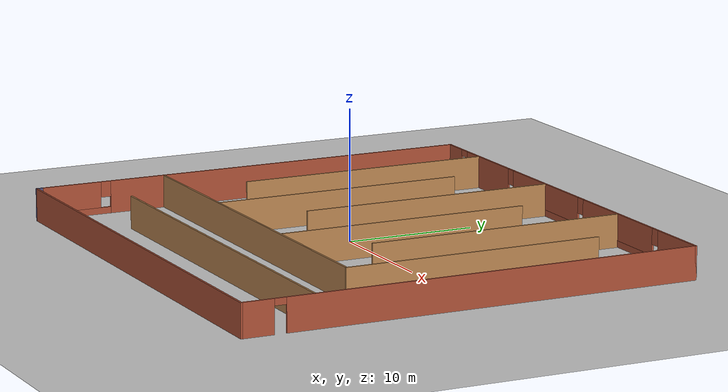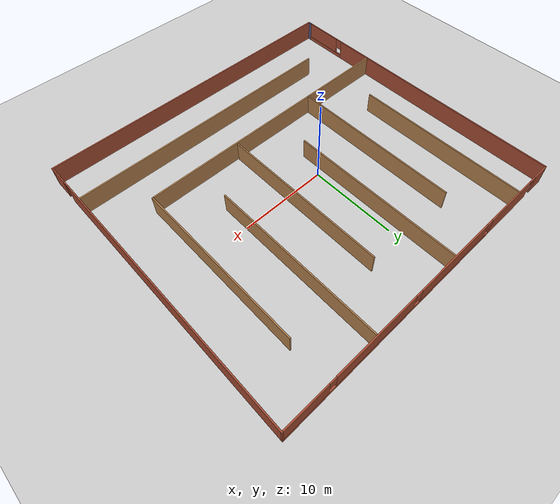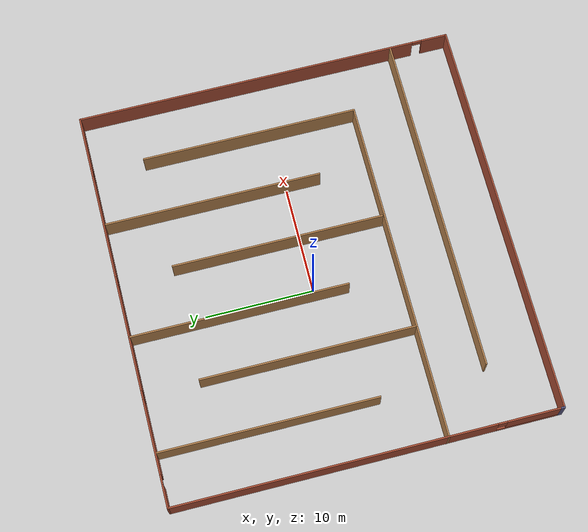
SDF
<sdf version="1.6">
 <world name="default">
  <light name="sun" type="directional">
   <pose>0 0 10 0 -0 0</pose>
   <diffuse>0.8 0.8 0.8 1</diffuse>
   <specular>0.1 0.1 0.1 1</specular>
   <attenuation>
    <range>1000</range>
    <constant>0.9</constant>
    <linear>0.01</linear>
    <quadratic>0.001</quadratic>
   </attenuation>
   <direction>-0.5 0.5 -1</direction>
  </light>
  <model name="ground_plane">
   <static>1</static>
   <link name="link">
    <collision name="collision">
     <geometry><plane><normal>0 0 1</normal><size>100 100</size></plane></geometry>
     <surface><friction><ode><mu>100</mu><mu2>50</mu2></ode></friction></surface>
    </collision>
    <visual name="visual">
     <cast_shadows>0</cast_shadows>
     <geometry><plane><normal>0 0 1</normal><size>100 100</size></plane></geometry>
     <material>
      <script><uri>file://media/materials/scripts/gazebo.material</uri><name>Gazebo/Grey</name></script>
     </material>
    </visual>
   </link>
  </model>
  <gravity>0 0 -9.8</gravity>
  <magnetic_field>6e-06 2.3e-05 -4.2e-05</magnetic_field>
  <atmosphere type="adiabatic"/>
  <physics name="default_physics" default="0" type="ode">
   <max_step_size>0.001</max_step_size>
   <real_time_factor>1</real_time_factor>
   <real_time_update_rate>1000</real_time_update_rate>
  </physics>
  <scene><ambient>0.4 0.4 0.4 1</ambient><background>0.7 0.7 0.7 1</background><shadows>1</shadows></scene>
  <spherical_coordinates>
   <surface_model>EARTH_WGS84</surface_model>
   <latitude_deg>0</latitude_deg>
   <longitude_deg>0</longitude_deg>
   <elevation>0</elevation>
   <heading_deg>0</heading_deg>
  </spherical_coordinates>
  <model name="Building1">
   <pose>2.18279 -0.630813 0 0 -0 0</pose>
   <link name="Wall_135">
    <pose>0.005428 17.55 0 0 -0 0</pose>
    <visual name="Wall_135_Visual_0">
     <pose>-17.5623 0 1.25 0 -0 0</pose>
     <geometry><box><size>2.12549 0.15 2.5</size></box></geometry>
     <material>
      <script><uri>file://media/materials/scripts/gazebo.material</uri><name>Gazebo/Bricks</name></script>
      <ambient>0.333333 0.333333 0.498039 1</ambient>
     </material>
     <meta><layer>0</layer></meta>
    </visual>
    <collision name="Wall_135_Collision_0">
     <geometry><box><size>2.12549 0.15 2.5</size></box></geometry>
     <pose>-17.5623 0 1.25 0 -0 0</pose>
    </collision>
    <visual name="Wall_135_Visual_1">
     <pose>-12.2043 0 1.25 0 -0 0</pose>
     <geometry><box><size>6.79049 0.15 2.5</size></box></geometry>
     <material>
      <script><uri>file://media/materials/scripts/gazebo.material</uri><name>Gazebo/Bricks</name></script>
      <ambient>0.333333 0.333333 0.498039 1</ambient>
     </material>
     <meta><layer>0</layer></meta>
    </visual>
    <collision name="Wall_135_Collision_1">
     <geometry><box><size>6.79049 0.15 2.5</size></box></geometry>
     <pose>-12.2043 0 1.25 0 -0 0</pose>
    </collision>
    <visual name="Wall_135_Visual_2">
     <pose>4.90799 0 0.25 0 -0 0</pose>
     <geometry><box><size>27.434 0.15 0.5</size></box></geometry>
     <material>
      <script><uri>file://media/materials/scripts/gazebo.material</uri><name>Gazebo/Bricks</name></script>
      <ambient>0.333333 0.333333 0.498039 1</ambient>
     </material>
     <meta><layer>0</layer></meta>
    </visual>
    <collision name="Wall_135_Collision_2">
     <geometry><box><size>27.434 0.15 0.5</size></box></geometry>
     <pose>4.90799 0 0.25 0 -0 0</pose>
    </collision>
    <visual name="Wall_135_Visual_3">
     <pose>-3.02838 0 1.5 0 -0 0</pose>
     <geometry><box><size>9.96126 0.15 2</size></box></geometry>
     <material>
      <script><uri>file://media/materials/scripts/gazebo.material</uri><name>Gazebo/Bricks</name></script>
      <ambient>0.333333 0.333333 0.498039 1</ambient>
     </material>
     <meta><layer>0</layer></meta>
    </visual>
    <collision name="Wall_135_Collision_3">
     <geometry><box><size>9.96126 0.15 2</size></box></geometry>
     <pose>-3.02838 0 1.5 0 -0 0</pose>
    </collision>
    <visual name="Wall_135_Visual_4">
     <pose>7.73288 0 1.5 0 -0 0</pose>
     <geometry><box><size>9.96126 0.15 2</size></box></geometry>
     <material>
      <script><uri>file://media/materials/scripts/gazebo.material</uri><name>Gazebo/Bricks</name></script>
      <ambient>0.333333 0.333333 0.498039 1</ambient>
     </material>
     <meta><layer>0</layer></meta>
    </visual>
    <collision name="Wall_135_Collision_4">
     <geometry><box><size>9.96126 0.15 2</size></box></geometry>
     <pose>7.73288 0 1.5 0 -0 0</pose>
    </collision>
    <visual name="Wall_135_Visual_5">
     <pose>16.0693 0 1.5 0 -0 0</pose>
     <geometry><box><size>5.11148 0.15 2</size></box></geometry>
     <material>
      <script><uri>file://media/materials/scripts/gazebo.material</uri><name>Gazebo/Bricks</name></script>
      <ambient>0.333333 0.333333 0.498039 1</ambient>
     </material>
     <meta><layer>0</layer></meta>
    </visual>
    <collision name="Wall_135_Collision_5">
     <geometry><box><size>5.11148 0.15 2</size></box></geometry>
     <pose>16.0693 0 1.5 0 -0 0</pose>
    </collision>
    <visual name="Wall_135_Visual_6">
     <pose>-8.40901 0 1.9 0 -0 0</pose>
     <geometry><box><size>0.8 0.15 1.2</size></box></geometry>
     <material>
      <script><uri>file://media/materials/scripts/gazebo.material</uri><name>Gazebo/Bricks</name></script>
      <ambient>0.333333 0.333333 0.498039 1</ambient>
     </material>
     <meta><layer>0</layer></meta>
    </visual>
    <collision name="Wall_135_Collision_6">
     <geometry><box><size>0.8 0.15 1.2</size></box></geometry>
     <pose>-8.40901 0 1.9 0 -0 0</pose>
    </collision>
    <visual name="Wall_135_Visual_7">
     <pose>2.35225 0 1.9 0 -0 0</pose>
     <geometry><box><size>0.8 0.15 1.2</size></box></geometry>
     <material>
      <script><uri>file://media/materials/scripts/gazebo.material</uri><name>Gazebo/Bricks</name></script>
      <ambient>0.333333 0.333333 0.498039 1</ambient>
     </material>
     <meta><layer>0</layer></meta>
    </visual>
    <collision name="Wall_135_Collision_7">
     <geometry><box><size>0.8 0.15 1.2</size></box></geometry>
     <pose>2.35225 0 1.9 0 -0 0</pose>
    </collision>
    <visual name="Wall_135_Visual_8">
     <pose>13.1135 0 1.9 0 -0 0</pose>
     <geometry><box><size>0.8 0.15 1.2</size></box></geometry>
     <material>
      <script><uri>file://media/materials/scripts/gazebo.material</uri><name>Gazebo/Bricks</name></script>
      <ambient>0.333333 0.333333 0.498039 1</ambient>
     </material>
     <meta><layer>0</layer></meta>
    </visual>
    <collision name="Wall_135_Collision_8">
     <geometry><box><size>0.8 0.15 1.2</size></box></geometry>
     <pose>13.1135 0 1.9 0 -0 0</pose>
    </collision>
    <visual name="Wall_135_Visual_9">
     <pose>-16.0495 0 2.25 0 -0 0</pose>
     <geometry><box><size>0.9 0.15 0.5</size></box></geometry>
     <material>
      <script><uri>file://media/materials/scripts/gazebo.material</uri><name>Gazebo/Bricks</name></script>
      <ambient>0.333333 0.333333 0.498039 1</ambient>
     </material>
     <meta><layer>0</layer></meta>
    </visual>
    <collision name="Wall_135_Collision_9">
     <geometry><box><size>0.9 0.15 0.5</size></box></geometry>
     <pose>-16.0495 0 2.25 0 -0 0</pose>
    </collision>
   </link>
   <link name="Wall_138">
    <collision name="Wall_138_Collision">
     <geometry><box><size>20 0.15 2.5</size></box></geometry>
     <pose>0 0 1.25 0 -0 0</pose>
    </collision>
    <visual name="Wall_138_Visual">
     <pose>0 0 1.25 0 -0 0</pose>
     <geometry><box><size>20 0.15 2.5</size></box></geometry>
     <material>
      <script><uri>file://media/materials/scripts/gazebo.material</uri><name>Gazebo/Wood</name></script>
      <ambient>0.333333 0.333333 0.498039 1</ambient>
     </material>
     <meta><layer>0</layer></meta>
    </visual>
    <pose>-13.6766 7.55431 0 0 -0 -1.5708</pose>
   </link>
   <link name="Wall_140">
    <collision name="Wall_140_Collision">
     <geometry><box><size>19.75 0.15 2.5</size></box></geometry>
     <pose>0 0 1.25 0 -0 0</pose>
    </collision>
    <visual name="Wall_140_Visual">
     <pose>0 0 1.25 0 -0 0</pose>
     <geometry><box><size>19.75 0.15 2.5</size></box></geometry>
     <material>
      <script><uri>file://media/materials/scripts/gazebo.material</uri><name>Gazebo/Wood</name></script>
      <ambient>0.333333 0.333333 0.498039 1</ambient>
     </material>
     <meta><layer>0</layer></meta>
    </visual>
    <pose>-8.29597 2.63601 0 0 -0 1.5708</pose>
   </link>
   <link name="Wall_142">
    <collision name="Wall_142_Collision">
     <geometry><box><size>20 0.15 2.5</size></box></geometry>
     <pose>0 0 1.25 0 -0 0</pose>
    </collision>
    <visual name="Wall_142_Visual">
     <pose>0 0 1.25 0 -0 0</pose>
     <geometry><box><size>20 0.15 2.5</size></box></geometry>
     <material>
      <script><uri>file://media/materials/scripts/gazebo.material</uri><name>Gazebo/Wood</name></script>
      <ambient>0.333333 0.333333 0.498039 1</ambient>
     </material>
     <meta><layer>0</layer></meta>
    </visual>
    <pose>-3.02295 7.55431 0 0 -0 -1.5708</pose>
   </link>
   <link name="Wall_144">
    <collision name="Wall_144_Collision">
     <geometry><box><size>19.5 0.15 2.5</size></box></geometry>
     <pose>0 0 1.25 0 -0 0</pose>
    </collision>
    <visual name="Wall_144_Visual">
     <pose>0 0 1.25 0 -0 0</pose>
     <geometry><box><size>19.5 0.15 2.5</size></box></geometry>
     <material>
      <script><uri>file://media/materials/scripts/gazebo.material</uri><name>Gazebo/Wood</name></script>
      <ambient>0.333333 0.333333 0.498039 1</ambient>
     </material>
     <meta><layer>0</layer></meta>
    </visual>
    <pose>2.46529 2.72624 0 0 -0 1.5708</pose>
   </link>
   <link name="Wall_146">
    <collision name="Wall_146_Collision">
     <geometry><box><size>20 0.15 2.5</size></box></geometry>
     <pose>0 0 1.25 0 -0 0</pose>
    </collision>
    <visual name="Wall_146_Visual">
     <pose>0 0 1.25 0 -0 0</pose>
     <geometry><box><size>20 0.15 2.5</size></box></geometry>
     <material>
      <script><uri>file://media/materials/scripts/gazebo.material</uri><name>Gazebo/Wood</name></script>
      <ambient>0.333333 0.333333 0.498039 1</ambient>
     </material>
     <meta><layer>0</layer></meta>
    </visual>
    <pose>7.84593 7.44669 0 0 -0 -1.5708</pose>
   </link>
   <link name="Wall_149">
    <collision name="Wall_149_Collision">
     <geometry><box><size>20 0.15 2.5</size></box></geometry>
     <pose>0 0 1.25 0 -0 0</pose>
    </collision>
    <visual name="Wall_149_Visual">
     <pose>0 0 1.25 0 -0 0</pose>
     <geometry><box><size>20 0.15 2.5</size></box></geometry>
     <material>
      <script><uri>file://media/materials/scripts/gazebo.material</uri><name>Gazebo/Wood</name></script>
      <ambient>0.333333 0.333333 0.498039 1</ambient>
     </material>
     <meta><layer>0</layer></meta>
    </visual>
    <pose>13.2266 2.76101 0 0 -0 1.5708</pose>
   </link>
   <link name="Wall_152">
    <pose>18.5554 0 0 0 -0 -1.5708</pose>
    <visual name="Wall_152_Visual_0">
     <pose>-1.68906 0 1.25 0 -0 0</pose>
     <geometry><box><size>31.8719 0.15 2.5</size></box></geometry>
     <material>
      <script><uri>file://media/materials/scripts/gazebo.material</uri><name>Gazebo/Bricks</name></script>
      <ambient>0.333333 0.333333 0.498039 1</ambient>
     </material>
     <meta><layer>0</layer></meta>
    </visual>
    <collision name="Wall_152_Collision_0">
     <geometry><box><size>31.8719 0.15 2.5</size></box></geometry>
     <pose>-1.68906 0 1.25 0 -0 0</pose>
    </collision>
    <visual name="Wall_152_Visual_1">
     <pose>16.3859 0 1.25 0 -0 0</pose>
     <geometry><box><size>2.47813 0.15 2.5</size></box></geometry>
     <material>
      <script><uri>file://media/materials/scripts/gazebo.material</uri><name>Gazebo/Bricks</name></script>
      <ambient>0.333333 0.333333 0.498039 1</ambient>
     </material>
     <meta><layer>0</layer></meta>
    </visual>
    <collision name="Wall_152_Collision_1">
     <geometry><box><size>2.47813 0.15 2.5</size></box></geometry>
     <pose>16.3859 0 1.25 0 -0 0</pose>
    </collision>
    <visual name="Wall_152_Visual_2">
     <pose>14.6969 0 2.25 0 -0 0</pose>
     <geometry><box><size>0.9 0.15 0.5</size></box></geometry>
     <material>
      <script><uri>file://media/materials/scripts/gazebo.material</uri><name>Gazebo/Bricks</name></script>
      <ambient>0.333333 0.333333 0.498039 1</ambient>
     </material>
     <meta><layer>0</layer></meta>
    </visual>
    <collision name="Wall_152_Collision_2">
     <geometry><box><size>0.9 0.15 0.5</size></box></geometry>
     <pose>14.6969 0 2.25 0 -0 0</pose>
    </collision>
   </link>
   <link name="Wall_153">
    <collision name="Wall_153_Collision">
     <geometry><box><size>37.25 0.15 2.5</size></box></geometry>
     <pose>0 0 1.25 0 -0 0</pose>
    </collision>
    <visual name="Wall_153_Visual">
     <pose>0 0 1.25 0 -0 0</pose>
     <geometry><box><size>37.25 0.15 2.5</size></box></geometry>
     <material>
      <script><uri>file://media/materials/scripts/gazebo.material</uri><name>Gazebo/Bricks</name></script>
      <ambient>0.333333 0.333333 0.498039 1</ambient>
     </material>
     <meta><layer>0</layer></meta>
    </visual>
    <pose>0.005428 -17.55 0 0 -0 3.14159</pose>
   </link>
   <link name="Wall_154">
    <collision name="Wall_154_Collision">
     <geometry><box><size>0.55 0.15 2.5</size></box></geometry>
     <pose>0 0 1.25 0 -0 0</pose>
    </collision>
    <visual name="Wall_154_Visual">
     <pose>0 0 1.25 0 -0 0</pose>
     <geometry><box><size>0.55 0.15 2.5</size></box></geometry>
     <material>
      <script><uri>file://media/materials/scripts/gazebo.material</uri><name>Gazebo/Grey</name></script>
      <ambient>0.333333 0.333333 0.498039 1</ambient>
     </material>
     <meta><layer>0</layer></meta>
    </visual>
    <pose>-18.5446 -17.35 0 0 -0 1.5708</pose>
   </link>
   <link name="Wall_156">
    <collision name="Wall_156_Collision">
     <geometry><box><size>31.75 0.15 2.5</size></box></geometry>
     <pose>0 0 1.25 0 -0 0</pose>
    </collision>
    <visual name="Wall_156_Visual">
     <pose>0 0 1.25 0 -0 0</pose>
     <geometry><box><size>31.75 0.15 2.5</size></box></geometry>
     <material>
      <script><uri>file://media/materials/scripts/gazebo.material</uri><name>Gazebo/Wood</name></script>
      <ambient>0.333333 0.333333 0.498039 1</ambient>
     </material>
     <meta><layer>0</layer></meta>
    </visual>
    <pose>2.69958 -12.1142 0 0 -0 3.14159</pose>
   </link>
   <link name="Wall_47">
    <pose>-18.5446 0.2 0 0 -0 -1.5708</pose>
    <visual name="Wall_47_Visual_0">
     <pose>-2.80922 0 1.25 0 -0 0</pose>
     <geometry><box><size>29.2316 0.15 2.5</size></box></geometry>
     <material>
      <script><uri>file://media/materials/scripts/gazebo.material</uri><name>Gazebo/Bricks</name></script>
      <ambient>0.333333 0.333333 0.498039 1</ambient>
     </material>
     <meta><layer>0</layer></meta>
    </visual>
    <collision name="Wall_47_Collision_0">
     <geometry><box><size>29.2316 0.15 2.5</size></box></geometry>
     <pose>-2.80922 0 1.25 0 -0 0</pose>
    </collision>
    <visual name="Wall_47_Visual_1">
     <pose>14.6158 0 0.25 0 -0 0</pose>
     <geometry><box><size>5.61844 0.15 0.5</size></box></geometry>
     <material>
      <script><uri>file://media/materials/scripts/gazebo.material</uri><name>Gazebo/Bricks</name></script>
      <ambient>0.333333 0.333333 0.498039 1</ambient>
     </material>
     <meta><layer>0</layer></meta>
    </visual>
    <collision name="Wall_47_Collision_1">
     <geometry><box><size>5.61844 0.15 0.5</size></box></geometry>
     <pose>14.6158 0 0.25 0 -0 0</pose>
    </collision>
    <visual name="Wall_47_Visual_2">
     <pose>15.0158 0 1.5 0 -0 0</pose>
     <geometry><box><size>4.81844 0.15 2</size></box></geometry>
     <material>
      <script><uri>file://media/materials/scripts/gazebo.material</uri><name>Gazebo/Bricks</name></script>
      <ambient>0.333333 0.333333 0.498039 1</ambient>
     </material>
     <meta><layer>0</layer></meta>
    </visual>
    <collision name="Wall_47_Collision_2">
     <geometry><box><size>4.81844 0.15 2</size></box></geometry>
     <pose>15.0158 0 1.5 0 -0 0</pose>
    </collision>
    <visual name="Wall_47_Visual_3">
     <pose>12.2066 0 1.9 0 -0 0</pose>
     <geometry><box><size>0.8 0.15 1.2</size></box></geometry>
     <material>
      <script><uri>file://media/materials/scripts/gazebo.material</uri><name>Gazebo/Bricks</name></script>
      <ambient>0.333333 0.333333 0.498039 1</ambient>
     </material>
     <meta><layer>0</layer></meta>
    </visual>
    <collision name="Wall_47_Collision_3">
     <geometry><box><size>0.8 0.15 1.2</size></box></geometry>
     <pose>12.2066 0 1.9 0 -0 0</pose>
    </collision>
   </link>
   <link name="Wall_68">
    <collision name="Wall_68_Collision">
     <geometry><box><size>31.75 0.15 2.5</size></box></geometry>
     <pose>0 0 1.25 0 -0 0</pose>
    </collision>
    <visual name="Wall_68_Visual">
     <pose>0 0 1.25 0 -0 0</pose>
     <geometry><box><size>31.75 0.15 2.5</size></box></geometry>
     <material>
      <script><uri>file://media/materials/scripts/gazebo.material</uri><name>Gazebo/Wood</name></script>
      <ambient>0.333333 0.333333 0.498039 1</ambient>
     </material>
     <meta><layer>0</layer></meta>
    </visual>
    <pose>-2.75543 -7.17891 0 0 -0 3.14159</pose>
   </link>
   <static>1</static>
  </model>
 </world>
</sdf>
